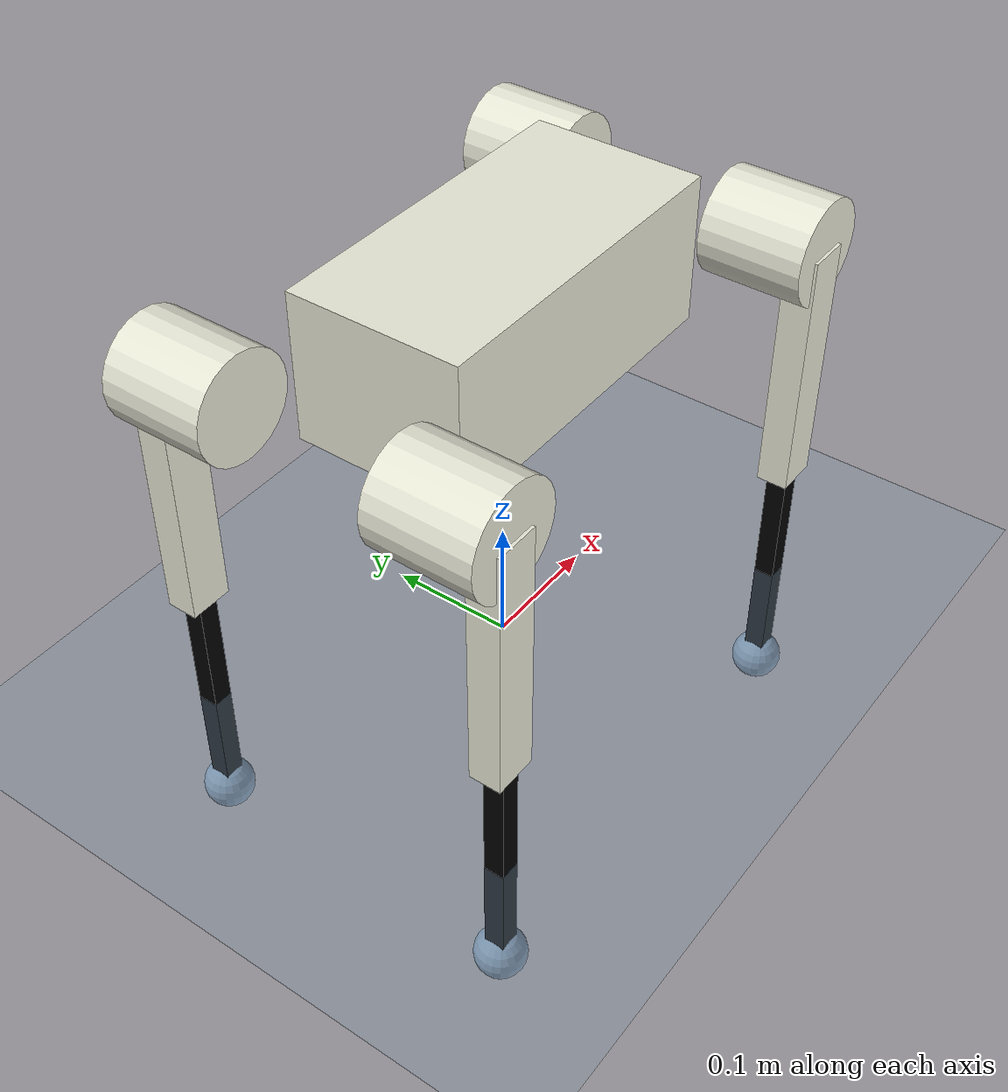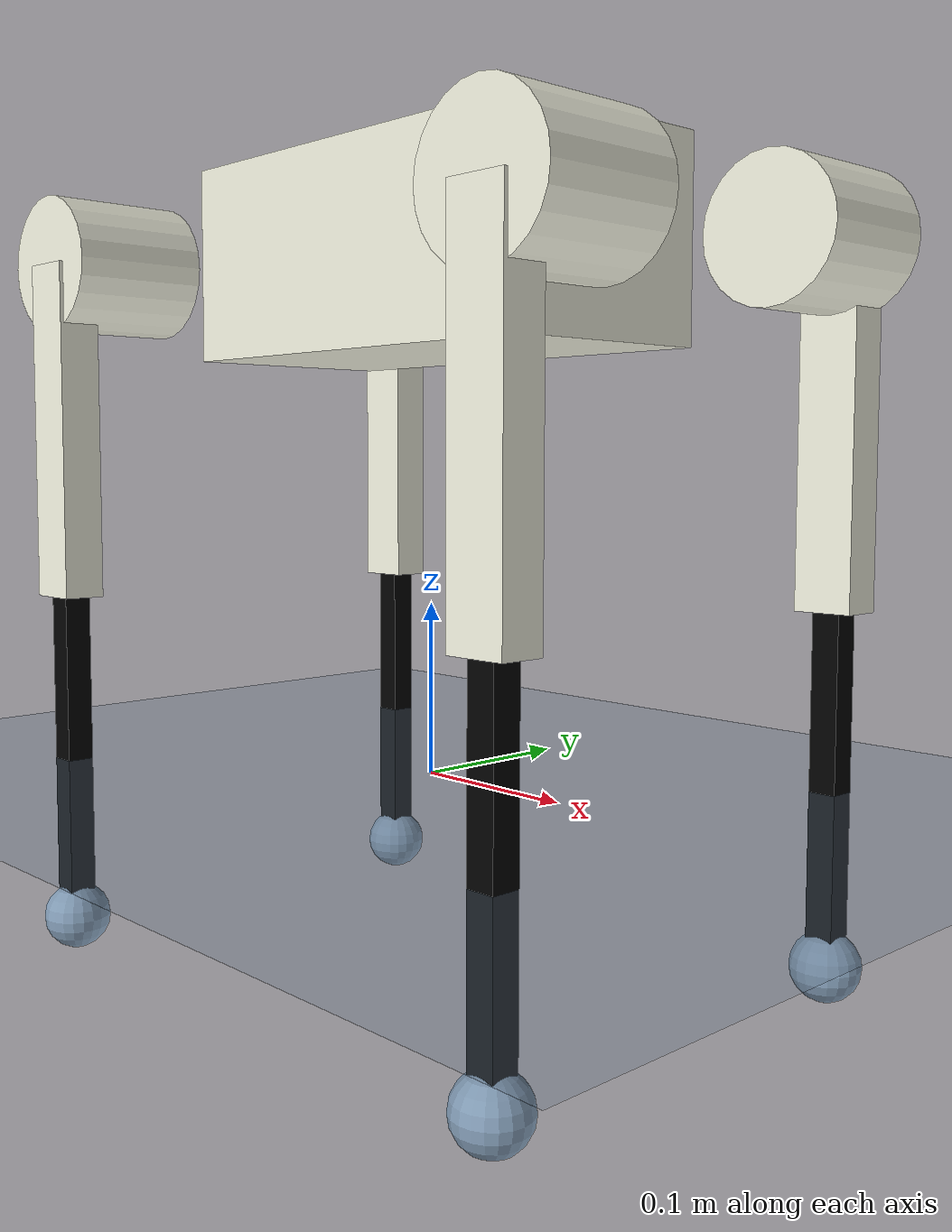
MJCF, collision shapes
<mujoco model="a1 scene">

  <include file="a1.xml"/>

  <statistic center="0 0 0.1" extent="0.8"/>

  <visual>
    <headlight diffuse="0.6 0.6 0.6" ambient="0.3 0.3 0.3" specular="0 0 0"/>
    <rgba haze="0.15 0.25 0.35 1"/>
    <global azimuth="120" elevation="-20"/>
  </visual>

  <asset>
    <texture type="skybox" builtin="gradient" rgb1="0.3 0.5 0.7" rgb2="0 0 0" width="512" height="3072"/>
    <texture type="2d" name="groundplane" builtin="checker" mark="edge" rgb1="0.2 0.3 0.4" rgb2="0.1 0.2 0.3" markrgb="0.8 0.8 0.8" width="300" height="300"/>
    <material name="groundplane" texture="groundplane" texuniform="true" texrepeat="5 5" reflectance="0.2"/>
  </asset>

  <worldbody>
    <light pos="0 0 1.5" dir="0 0 -1" directional="true"/>
    <geom name="floor" size="0 0 0.05" type="plane" material="groundplane"/>
  </worldbody>

</mujoco>

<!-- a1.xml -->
<mujoco model="a1">
    <compiler angle="radian" meshdir="meshes" autolimits="true" />

    <size njmax="500" nconmax="100" />
    <option gravity='0 0 -9.806' iterations='50' solver='Newton' timestep='0.002' cone="elliptic" impratio="100" >
        <flag sensornoise="enable" />
    </option>

    <default>
        <geom contype="1" conaffinity="1" friction="0.6" rgba="0.5 0.6 0.7 1" margin="0.001" group="0"/>

        <light castshadow="false" diffuse="1 1 1"/>
        <motor ctrlrange="-33.5 33.5" ctrllimited="true"/>
        <camera fovy="60"/>
        <joint damping="0.01" armature="0.01" frictionloss="0.2" />

    </default>

    <asset>
        <mesh name="trunk" file="trunk.stl" />
        <mesh name="hip" file="hip.stl" />
        <mesh name="thigh_mirror" file="thigh_mirror.stl" />
        <mesh name="calf" file="calf.stl" />
        <mesh name="thigh" file="thigh.stl" />
    </asset>

    <visual>
        <rgba com="0.502 1.0 0 0.5" contactforce="0.98 0.4 0.4 0.7" contactpoint="1.0 1.0 0.6 0.4"/>
        <scale com="0.2" forcewidth="0.035" contactwidth="0.10" contactheight="0.04"/>
    </visual>

    <worldbody>
        <body name="trunk" pos="0 0 0.3">
            <inertial pos="0.0127283 0.00218554 0.000514891" quat="0.00186575 0.711506 0.000389649 0.702677" mass="4.713" diaginertia="0.0648213 0.0565803 0.0169323" />
            <joint type="free" />
            <geom type="mesh" contype="0" conaffinity="0" group="1" rgba="0.913725 0.913725 0.847059 1" mesh="trunk" />
            <geom size="0.1335 0.066 0.057" type="box" rgba="0.913725 0.913725 0.847059 0" />
            <geom size="0.0005 0.0005 0.0005" type="box" contype="0" conaffinity="0" group="1" rgba="0.8 0 0 0" />
            <geom size="0.0005 0.0005 0.0005" type="box" rgba="0.8 0 0 0" />
            <site name="imu" pos="0 0 0"/>

            <body name="FR_hip" pos="0.183 -0.047 0">
                <inertial pos="-0.003311 -0.000635 3.1e-05" quat="0.507528 0.506268 0.491507 0.494499" mass="0.696" diaginertia="0.000807752 0.00055293 0.000468983" />
                <joint name="FR_hip_joint" pos="0 0 0" axis="1 0 0" limited="true" range="-0.802851 0.802851" />
                <geom quat="0 1 0 0" type="mesh" contype="0" conaffinity="0" group="1" rgba="0.913725 0.913725 0.847059 1" mesh="hip" />
                <geom size="0.04 0.04" pos="0 -0.055 0" quat="0.707107 0.707107 0 0" type="cylinder" rgba="0.913725 0.913725 0.847059 0" />
                <body name="FR_thigh" pos="0 -0.08505 0">
                    <inertial pos="-0.003237 0.022327 -0.027326" quat="0.999125 -0.00256393 -0.0409531 -0.00806091" mass="1.013" diaginertia="0.00555739 0.00513936 0.00133944" />
                    <joint name="FR_thigh_joint" pos="0 0 0" axis="0 1 0" limited="true" range="-1.0472 4.18879" />
                    <geom type="mesh" contype="0" conaffinity="0" group="1" rgba="0.913725 0.913725 0.847059 1" mesh="thigh_mirror" />
                    <geom size="0.1 0.01225 0.017" pos="0 0 -0.1" quat="0.707107 0 0.707107 0" type="box" rgba="0.913725 0.913725 0.847059 0" />
                    <body name="FR_calf" pos="0 0 -0.2">
                        <inertial pos="0.00472659 0 -0.131975" quat="0.706886 0.017653 0.017653 0.706886" mass="0.226" diaginertia="0.00340344 0.00339393 3.54834e-05" />
                        <joint name="FR_calf_joint" pos="0 0 0" axis="0 1 0" limited="true" range="-2.69653 -0.916298" />
                        <geom type="mesh" contype="0" conaffinity="0" group="1" rgba="0 0 0 1" mesh="calf" />
                        <geom size="0.1 0.008 0.008" pos="0 0 -0.1" quat="0.707107 0 0.707107 0" type="box" rgba="0 0 0 0" />
                        <geom size="0.01" pos="0 0 -0.2" contype="0" conaffinity="0" group="1" rgba="0 0 0 1" />
                        <geom type="sphere" size="0.02" pos="0 0 -0.2" priority="1" solimp="0.015 1 0.031" condim="6" friction="0.6" />
                        <site name="FR_foot" pos="0 0 -0.2" type="sphere" size=".015" />
                    </body>
                </body>
            </body>
            <body name="FL_hip" pos="0.183 0.047 0">
                <inertial pos="-0.003311 0.000635 3.1e-05" quat="0.494499 0.491507 0.506268 0.507528" mass="0.696" diaginertia="0.000807752 0.00055293 0.000468983" />
                <joint name="FL_hip_joint" pos="0 0 0" axis="1 0 0" limited="true" range="-0.802851 0.802851" />
                <geom type="mesh" contype="0" conaffinity="0" group="1" rgba="0.913725 0.913725 0.847059 1" mesh="hip" />
                <geom size="0.04 0.04" pos="0 0.055 0" quat="0.707107 0.707107 0 0" type="cylinder" rgba="0.913725 0.913725 0.847059 0" />
                <body name="FL_thigh" pos="0 0.08505 0">
                    <inertial pos="-0.003237 -0.022327 -0.027326" quat="0.999125 0.00256393 -0.0409531 0.00806091" mass="1.013" diaginertia="0.00555739 0.00513936 0.00133944" />
                    <joint name="FL_thigh_joint" pos="0 0 0" axis="0 1 0" limited="true" range="-1.0472 4.18879" />
                    <geom type="mesh" contype="0" conaffinity="0" group="1" rgba="0.913725 0.913725 0.847059 1" mesh="thigh" />
                    <geom size="0.1 0.01225 0.017" pos="0 0 -0.1" quat="0.707107 0 0.707107 0" type="box" rgba="0.913725 0.913725 0.847059 0" />
                    <body name="FL_calf" pos="0 0 -0.2">
                        <inertial pos="0.00472659 0 -0.131975" quat="0.706886 0.017653 0.017653 0.706886" mass="0.226" diaginertia="0.00340344 0.00339393 3.54834e-05" />
                        <joint name="FL_calf_joint" pos="0 0 0" axis="0 1 0" limited="true" range="-2.69653 -0.916298" />
                        <geom type="mesh" contype="0" conaffinity="0" group="1" rgba="0 0 0 1" mesh="calf" />
                        <geom size="0.1 0.008 0.008" pos="0 0 -0.1" quat="0.707107 0 0.707107 0" type="box" rgba="0 0 0 0" />
                        <geom size="0.01" pos="0 0 -0.2" contype="0" conaffinity="0" group="1" rgba="0 0 0 1" />
                        <geom type="sphere" size="0.02" pos="0 0 -0.2" priority="1" solimp="0.015 1 0.031" condim="6" friction="0.6" />
                        <site name="FL_foot" pos="0 0 -0.2" type="sphere" size=".015" />
                    </body>
                </body>
            </body>
            <body name="RR_hip" pos="-0.183 -0.047 0">
                <inertial pos="0.003311 -0.000635 3.1e-05" quat="0.491507 0.494499 0.507528 0.506268" mass="0.696" diaginertia="0.000807752 0.00055293 0.000468983" />
                <joint name="RR_hip_joint" pos="0 0 0" axis="1 0 0" limited="true" range="-0.802851 0.802851" />
                <geom quat="0 0 0 -1" type="mesh" contype="0" conaffinity="0" group="1" rgba="0.913725 0.913725 0.847059 1" mesh="hip" />
                <geom size="0.04 0.04" pos="0 -0.055 0" quat="0.707107 0.707107 0 0" type="cylinder" rgba="0.913725 0.913725 0.847059 0" />
                <body name="RR_thigh" pos="0 -0.08505 0">
                    <inertial pos="-0.003237 0.022327 -0.027326" quat="0.999125 -0.00256393 -0.0409531 -0.00806091" mass="1.013" diaginertia="0.00555739 0.00513936 0.00133944" />
                    <joint name="RR_thigh_joint" pos="0 0 0" axis="0 1 0" limited="true" range="-1.0472 4.18879" />
                    <geom type="mesh" contype="0" conaffinity="0" group="1" rgba="0.913725 0.913725 0.847059 1" mesh="thigh_mirror" />
                    <geom size="0.1 0.01225 0.017" pos="0 0 -0.1" quat="0.707107 0 0.707107 0" type="box" rgba="0.913725 0.913725 0.847059 0" />
                    <body name="RR_calf" pos="0 0 -0.2">
                        <inertial pos="0.00472659 0 -0.131975" quat="0.706886 0.017653 0.017653 0.706886" mass="0.226" diaginertia="0.00340344 0.00339393 3.54834e-05" />
                        <joint name="RR_calf_joint" pos="0 0 0" axis="0 1 0" limited="true" range="-2.69653 -0.916298" />
                        <geom type="mesh" contype="0" conaffinity="0" group="1" rgba="0 0 0 1" mesh="calf" />
                        <geom size="0.1 0.008 0.008" pos="0 0 -0.1" quat="0.707107 0 0.707107 0" type="box" rgba="0 0 0 0" />
                        <geom size="0.01" pos="0 0 -0.2" contype="0" conaffinity="0" group="1" rgba="0 0 0 1" />
                        <geom type="sphere" size="0.02" pos="0 0 -0.2" priority="1" solimp="0.015 1 0.031" condim="6" friction="0.6" />
                        <site name="RR_foot" pos="0 0 -0.2" type="sphere" size=".015" />
                    </body>
                </body>
            </body>
            <body name="RL_hip" pos="-0.183 0.047 0">
                <inertial pos="0.003311 0.000635 3.1e-05" quat="0.506268 0.507528 0.494499 0.491507" mass="0.696" diaginertia="0.000807752 0.00055293 0.000468983" />
                <joint name="RL_hip_joint" pos="0 0 0" axis="1 0 0" limited="true" range="-0.802851 0.802851" />
                <geom quat="0 0 1 0" type="mesh" contype="0" conaffinity="0" group="1" rgba="0.913725 0.913725 0.847059 1" mesh="hip" />
                <geom size="0.04 0.04" pos="0 0.055 0" quat="0.707107 0.707107 0 0" type="cylinder" rgba="0.913725 0.913725 0.847059 0" />
                <body name="RL_thigh" pos="0 0.08505 0">
                    <inertial pos="-0.003237 -0.022327 -0.027326" quat="0.999125 0.00256393 -0.0409531 0.00806091" mass="1.013" diaginertia="0.00555739 0.00513936 0.00133944" />
                    <joint name="RL_thigh_joint" pos="0 0 0" axis="0 1 0" limited="true" range="-1.0472 4.18879" />
                    <geom type="mesh" contype="0" conaffinity="0" group="1" rgba="0.913725 0.913725 0.847059 1" mesh="thigh" />
                    <geom size="0.1 0.01225 0.017" pos="0 0 -0.1" quat="0.707107 0 0.707107 0" type="box" rgba="0.913725 0.913725 0.847059 0" />
                    <body name="RL_calf" pos="0 0 -0.2">
                        <inertial pos="0.00472659 0 -0.131975" quat="0.706886 0.017653 0.017653 0.706886" mass="0.226" diaginertia="0.00340344 0.00339393 3.54834e-05" />
                        <joint name="RL_calf_joint" pos="0 0 0" axis="0 1 0" limited="true" range="-2.69653 -0.916298" />
                        <geom type="mesh" contype="0" conaffinity="0" group="1" rgba="0 0 0 1" mesh="calf" />
                        <geom size="0.1 0.008 0.008" pos="0 0 -0.1" quat="0.707107 0 0.707107 0" type="box" rgba="0 0 0 0" />
                        <geom size="0.01" pos="0 0 -0.2" contype="0" conaffinity="0" group="1" rgba="0 0 0 1" />
                        <geom type="sphere" size="0.02" pos="0 0 -0.2" priority="1" solimp="0.015 1 0.031" condim="6" friction="0.6" />
                        <site name="RL_foot" pos="0 0 -0.2" type="sphere" size=".015" />
                    </body>
                </body>
            </body>

        </body>
    </worldbody>

    <actuator>
        <motor joint="FR_hip_joint" name="FR_hip" gear="1" ctrllimited="true" ctrlrange="-100 100" />
        <motor joint="FR_thigh_joint" name="FR_thigh" gear="1" ctrllimited="true"
            ctrlrange="-100 100" />
        <motor joint="FR_calf_joint" name="FR_calf" gear="1" ctrllimited="true" ctrlrange="-100 100" />
        <motor joint="FL_hip_joint" name="FL_hip" gear="1" ctrllimited="true" ctrlrange="-100 100" />
        <motor joint="FL_thigh_joint" name="FL_thigh" gear="1" ctrllimited="true"
            ctrlrange="-100 100" />
        <motor joint="FL_calf_joint" name="FL_calf" gear="1" ctrllimited="true" ctrlrange="-100 100" />
        <motor joint="RR_hip_joint" name="RR_hip" gear="1" ctrllimited="true" ctrlrange="-100 100" />
        <motor joint="RR_thigh_joint" name="RR_thigh" gear="1" ctrllimited="true"
            ctrlrange="-100 100" />
        <motor joint="RR_calf_joint" name="RR_calf" gear="1" ctrllimited="true" ctrlrange="-100 100" />
        <motor joint="RL_hip_joint" name="RL_hip" gear="1" ctrllimited="true" ctrlrange="-100 100" />
        <motor joint="RL_thigh_joint" name="RL_thigh" gear="1" ctrllimited="true"
            ctrlrange="-100 100" />
        <motor joint="RL_calf_joint" name="RL_calf" gear="1" ctrllimited="true" ctrlrange="-100 100" />
    </actuator>

    <sensor>
        <framepos name="torso_pos" objtype="site" objname="imu" />
        <framequat name="Body_Quat" objtype="site" objname="imu"/>
        <framelinvel name="torso_linvel" objtype="site" objname="imu" />
        <gyro name="Body_Gyro" site="imu"/>
        <accelerometer name="Body_Acc" site="imu"/>

        <jointpos name="pos_FR_hip_joint" joint="FR_hip_joint" noise="0.001" />
        <jointpos name="pos_FR_thigh_joint" joint="FR_thigh_joint" noise="0.001" />
        <jointpos name="pos_FR_calf_joint" joint="FR_calf_joint" noise="0.001" />
        <jointpos name="pos_FL_hip_joint" joint="FL_hip_joint" noise="0.001" />
        <jointpos name="pos_FL_thigh_joint" joint="FL_thigh_joint" noise="0.001" />
        <jointpos name="pos_FL_calf_joint" joint="FL_calf_joint" noise="0.001" />
        <jointpos name="pos_RR_hip_joint" joint="RR_hip_joint" noise="0.001" />
        <jointpos name="pos_RR_thigh_joint" joint="RR_thigh_joint" noise="0.001" />
        <jointpos name="pos_RR_calf_joint" joint="RR_calf_joint" noise="0.001" />
        <jointpos name="pos_RL_hip_joint" joint="RL_hip_joint" noise="0.001" />
        <jointpos name="pos_RL_thigh_joint" joint="RL_thigh_joint" noise="0.001" />
        <jointpos name="pos_RL_calf_joint" joint="RL_calf_joint" noise="0.001" />

        <jointvel name="vel_FR_hip_joint" joint="FR_hip_joint" noise="0.1" />
        <jointvel name="vel_FR_thigh_joint" joint="FR_thigh_joint" noise="0.1" />
        <jointvel name="vel_FR_calf_joint" joint="FR_calf_joint" noise="0.1" />
        <jointvel name="vel_FL_hip_joint" joint="FL_hip_joint" noise="0.1" />
        <jointvel name="vel_FL_thigh_joint" joint="FL_thigh_joint" noise="0.1" />
        <jointvel name="vel_FL_calf_joint" joint="FL_calf_joint" noise="0.1" />
        <jointvel name="vel_RR_hip_joint" joint="RR_hip_joint" noise="0.1" />
        <jointvel name="vel_RR_thigh_joint" joint="RR_thigh_joint" noise="0.1" />
        <jointvel name="vel_RR_calf_joint" joint="RR_calf_joint" noise="0.1" />
        <jointvel name="vel_RL_hip_joint" joint="RL_hip_joint" noise="0.1" />
        <jointvel name="vel_RL_thigh_joint" joint="RL_thigh_joint" noise="0.1" />
        <jointvel name="vel_RL_calf_joint" joint="RL_calf_joint" noise="0.1" />

        <touch name="FR_touch" site="FR_foot" />
        <touch name="FL_touch" site="FL_foot" />
        <touch name="RR_touch" site="RR_foot" />
        <touch name="RL_touch" site="RL_foot" />

    </sensor>

    <keyframe>
        <key name="home"
            qpos="0 0 0.26
               1 0 0 0
               -0.000341931 0.0181576 -0.0268335
               0.00160968 0.0247957 -0.0270045
               0.00191398 -0.033048 -0.0675298
               -0.00199489 -0.0374747 -0.0681862" />
        <!--     qpos="-0.0501827 0.00107117 0.143925 -->
    </keyframe>

</mujoco>
